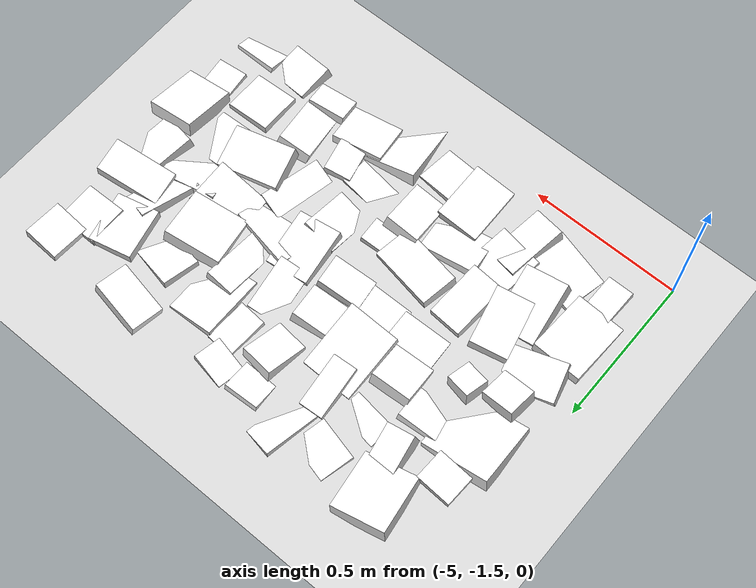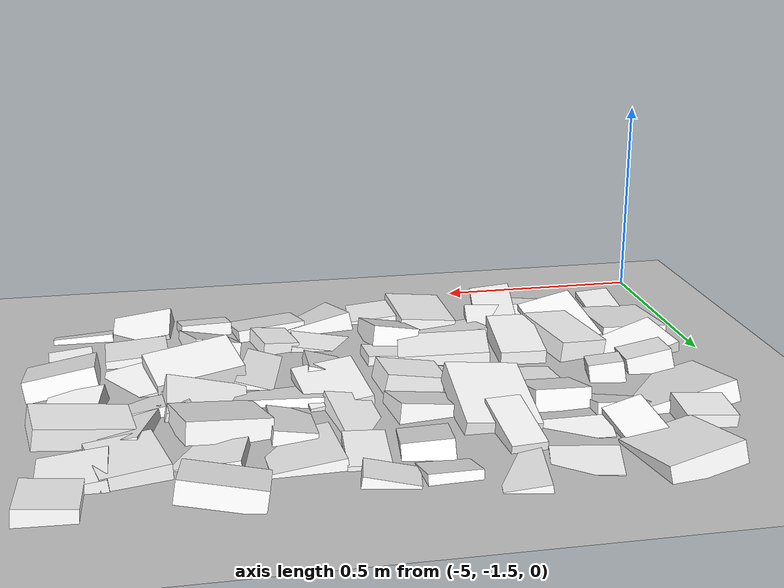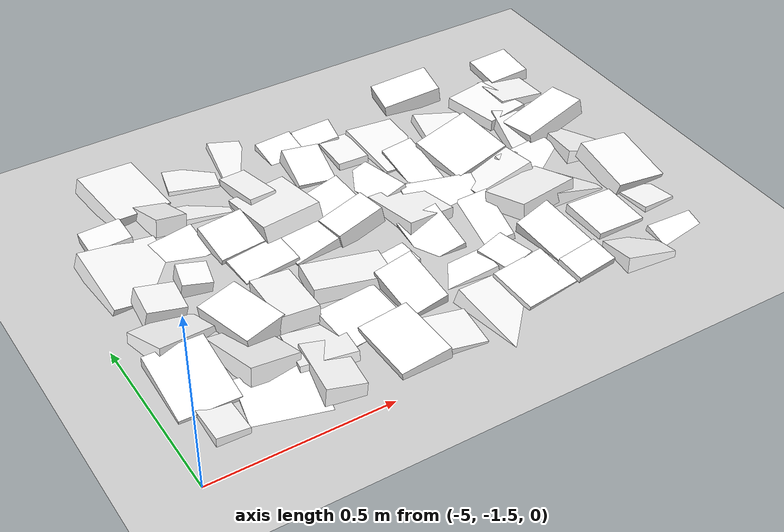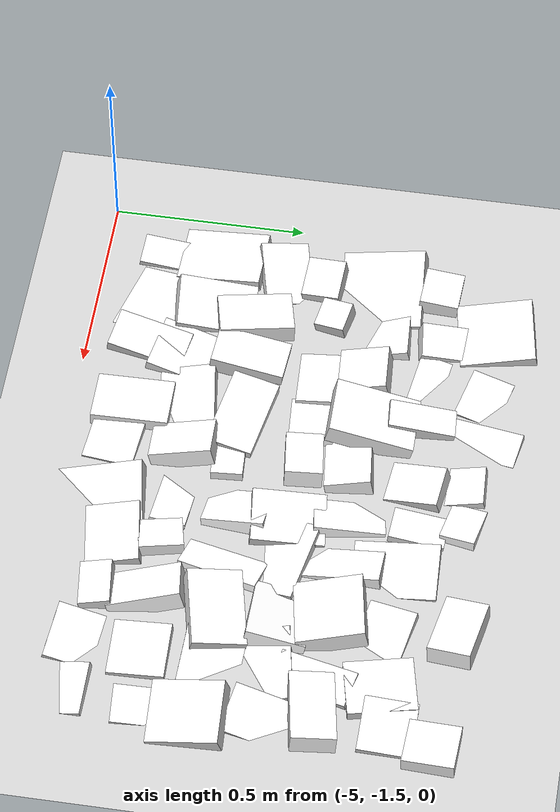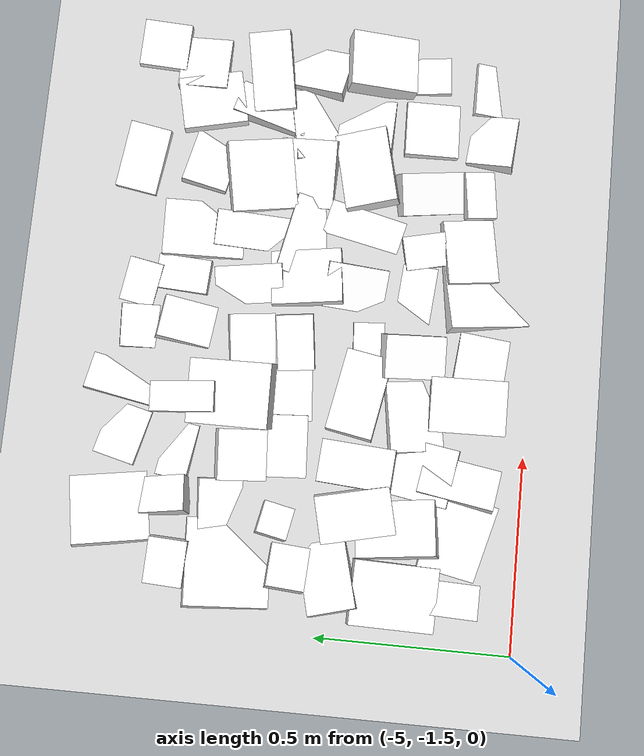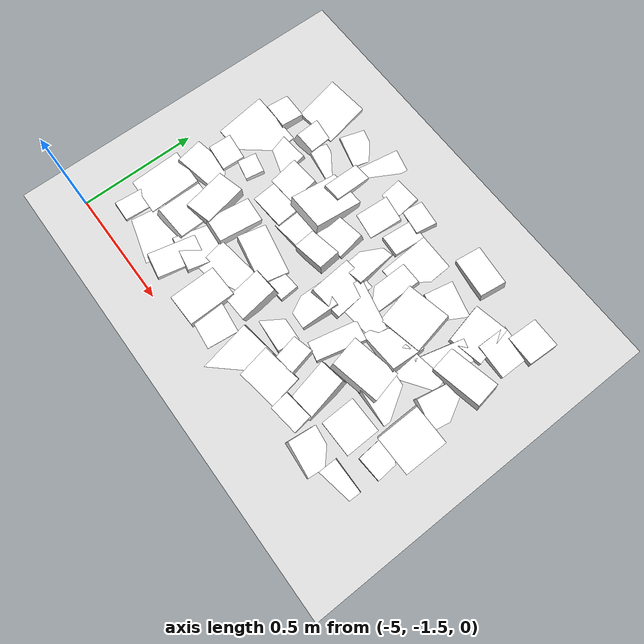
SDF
<sdf version="1.7">
 <world name="default">
  <include><uri>model://sun</uri></include>
  <include><uri>model://ground_plane</uri></include>
  <model name="static_environment">
   <static>true</static>
   <link name="region_270">
    <pose>-3.477037490346877 -0.45913335357981533 0.00507151562607162 -0.02771612115756067 0.08115244952845346 3.095913842097706</pose>
    <collision name="region_270_collision">
     <geometry><box><size>0.12334864234570181 0.12837354774721688 0.05</size></box></geometry>
     <surface><friction><ode><mu>1.0</mu><mu2>1.0</mu2></ode></friction></surface>
    </collision>
    <visual name="region_270_visual">
     <geometry><box><size>0.12334864234570181 0.12837354774721688 0.05</size></box></geometry>
     <material><ambient>1.0 1.0 1.0 1.0</ambient><diffuse>1.0 1.0 1.0 1.0</diffuse></material>
    </visual>
   </link>
   <link name="region_272">
    <pose>-3.801332803898247 -0.4361580840720827 0.02436785362661531 -0.1017771875999352 0.1519501084889815 2.9792150188601147</pose>
    <collision name="region_272_collision">
     <geometry><box><size>0.17538744813419 0.10896776987529247 0.05</size></box></geometry>
     <surface><friction><ode><mu>1.0</mu><mu2>1.0</mu2></ode></friction></surface>
    </collision>
    <visual name="region_272_visual">
     <geometry><box><size>0.17538744813419 0.10896776987529247 0.05</size></box></geometry>
     <material><ambient>1.0 1.0 1.0 1.0</ambient><diffuse>1.0 1.0 1.0 1.0</diffuse></material>
    </visual>
   </link>
   <link name="region_274">
    <pose>-4.12703195314999 -0.46398136101403087 -0.013462635521631183 -0.048701120936580466 0.17036177526596347 2.9555949188437514</pose>
    <collision name="region_274_collision">
     <geometry><box><size>0.11653447453826984 0.0905248681392372 0.05</size></box></geometry>
     <surface><friction><ode><mu>1.0</mu><mu2>1.0</mu2></ode></friction></surface>
    </collision>
    <visual name="region_274_visual">
     <geometry><box><size>0.11653447453826984 0.0905248681392372 0.05</size></box></geometry>
     <material><ambient>1.0 1.0 1.0 1.0</ambient><diffuse>1.0 1.0 1.0 1.0</diffuse></material>
    </visual>
   </link>
   <link name="region_275">
    <pose>-4.24647150931622 -0.479169787615879 -0.01838302702195481 -0.2265430162995712 0.01706716110331652 3.194122026085424</pose>
    <collision name="region_275_collision">
     <geometry><box><size>0.11393846133857073 0.12169243471842056 0.05</size></box></geometry>
     <surface><friction><ode><mu>1.0</mu><mu2>1.0</mu2></ode></friction></surface>
    </collision>
    <visual name="region_275_visual">
     <geometry><box><size>0.11393846133857073 0.12169243471842056 0.05</size></box></geometry>
     <material><ambient>1.0 1.0 1.0 1.0</ambient><diffuse>1.0 1.0 1.0 1.0</diffuse></material>
    </visual>
   </link>
   <link name="region_276">
    <pose>-4.394379219587412 -0.4435234717531652 -0.021938511164004245 -0.056529555046228586 -0.16837221297509358 2.965509576039369</pose>
    <collision name="region_276_collision">
     <geometry><box><size>0.09641826687533642 0.1868945103596235 0.05</size></box></geometry>
     <surface><friction><ode><mu>1.0</mu><mu2>1.0</mu2></ode></friction></surface>
    </collision>
    <visual name="region_276_visual">
     <geometry><box><size>0.09641826687533642 0.1868945103596235 0.05</size></box></geometry>
     <material><ambient>1.0 1.0 1.0 1.0</ambient><diffuse>1.0 1.0 1.0 1.0</diffuse></material>
    </visual>
   </link>
   <link name="region_277">
    <pose>-4.529044577309827 -0.4614298038781749 -0.022188551628008486 0.0937347089489462 -0.046030101639306376 2.8915722071055763</pose>
    <collision name="region_277_collision">
     <geometry><box><size>0.14416841120564872 0.11242126633868808 0.05</size></box></geometry>
     <surface><friction><ode><mu>1.0</mu><mu2>1.0</mu2></ode></friction></surface>
    </collision>
    <visual name="region_277_visual">
     <geometry><box><size>0.14416841120564872 0.11242126633868808 0.05</size></box></geometry>
     <material><ambient>1.0 1.0 1.0 1.0</ambient><diffuse>1.0 1.0 1.0 1.0</diffuse></material>
    </visual>
   </link>
   <link name="region_278">
    <pose>-4.726812363627556 -0.45085532001113615 0.009127379885384791 -0.1532194229647395 -0.15840608905423859 3.322147553441876</pose>
    <collision name="region_278_collision">
     <geometry><box><size>0.1745114483545691 0.1960445577811587 0.05</size></box></geometry>
     <surface><friction><ode><mu>1.0</mu><mu2>1.0</mu2></ode></friction></surface>
    </collision>
    <visual name="region_278_visual">
     <geometry><box><size>0.1745114483545691 0.1960445577811587 0.05</size></box></geometry>
     <material><ambient>1.0 1.0 1.0 1.0</ambient><diffuse>1.0 1.0 1.0 1.0</diffuse></material>
    </visual>
   </link>
   <link name="region_290">
    <pose>-3.5182793064703355 -0.5716456086656222 -0.0038640715060902844 0.059697148538746414 -0.12177581197744097 3.125192173794687</pose>
    <collision name="region_290_collision">
     <geometry><box><size>0.1432901630814529 0.13337231392042803 0.05</size></box></geometry>
     <surface><friction><ode><mu>1.0</mu><mu2>1.0</mu2></ode></friction></surface>
    </collision>
    <visual name="region_290_visual">
     <geometry><box><size>0.1432901630814529 0.13337231392042803 0.05</size></box></geometry>
     <material><ambient>1.0 1.0 1.0 1.0</ambient><diffuse>1.0 1.0 1.0 1.0</diffuse></material>
    </visual>
   </link>
   <link name="region_291">
    <pose>-3.622314888724005 -0.6033371100489776 0.0037374414146630966 -0.0044431856971697825 -0.04015640657507413 3.36294143729207</pose>
    <collision name="region_291_collision">
     <geometry><box><size>0.14340024546126323 0.17183384239830535 0.05</size></box></geometry>
     <surface><friction><ode><mu>1.0</mu><mu2>1.0</mu2></ode></friction></surface>
    </collision>
    <visual name="region_291_visual">
     <geometry><box><size>0.14340024546126323 0.17183384239830535 0.05</size></box></geometry>
     <material><ambient>1.0 1.0 1.0 1.0</ambient><diffuse>1.0 1.0 1.0 1.0</diffuse></material>
    </visual>
   </link>
   <link name="region_292">
    <pose>-3.784944268074196 -0.6143648629070603 -0.017365858259134326 -0.051249860885396015 -0.1654414298388336 2.93897540787294</pose>
    <collision name="region_292_collision">
     <geometry><box><size>0.15494358042405917 0.12228658190733036 0.05</size></box></geometry>
     <surface><friction><ode><mu>1.0</mu><mu2>1.0</mu2></ode></friction></surface>
    </collision>
    <visual name="region_292_visual">
     <geometry><box><size>0.15494358042405917 0.12228658190733036 0.05</size></box></geometry>
     <material><ambient>1.0 1.0 1.0 1.0</ambient><diffuse>1.0 1.0 1.0 1.0</diffuse></material>
    </visual>
   </link>
   <link name="region_293">
    <pose>-3.974313152677465 -0.6120665604997086 -0.01869808587148969 -0.08672786169231161 -0.1171440732571759 3.1869964123627805</pose>
    <collision name="region_293_collision">
     <geometry><box><size>0.15463840681200938 0.21488733294896523 0.05</size></box></geometry>
     <surface><friction><ode><mu>1.0</mu><mu2>1.0</mu2></ode></friction></surface>
    </collision>
    <visual name="region_293_visual">
     <geometry><box><size>0.15463840681200938 0.21488733294896523 0.05</size></box></geometry>
     <material><ambient>1.0 1.0 1.0 1.0</ambient><diffuse>1.0 1.0 1.0 1.0</diffuse></material>
    </visual>
   </link>
   <link name="region_294">
    <pose>-4.099690610032042 -0.5737287116586147 -0.010864970078264136 0.08185346107121372 0.01842337183518261 3.0750224242988264</pose>
    <collision name="region_294_collision">
     <geometry><box><size>0.09048984331780428 0.14124593544706218 0.05</size></box></geometry>
     <surface><friction><ode><mu>1.0</mu><mu2>1.0</mu2></ode></friction></surface>
    </collision>
    <visual name="region_294_visual">
     <geometry><box><size>0.09048984331780428 0.14124593544706218 0.05</size></box></geometry>
     <material><ambient>1.0 1.0 1.0 1.0</ambient><diffuse>1.0 1.0 1.0 1.0</diffuse></material>
    </visual>
   </link>
   <link name="region_295">
    <pose>-4.227442176377249 -0.5931194033051537 -0.001867135447246114 -0.2222855325430187 -0.08153079050962764 3.023359635275211</pose>
    <collision name="region_295_collision">
     <geometry><box><size>0.1113451831152201 0.1408866050441963 0.05</size></box></geometry>
     <surface><friction><ode><mu>1.0</mu><mu2>1.0</mu2></ode></friction></surface>
    </collision>
    <visual name="region_295_visual">
     <geometry><box><size>0.1113451831152201 0.1408866050441963 0.05</size></box></geometry>
     <material><ambient>1.0 1.0 1.0 1.0</ambient><diffuse>1.0 1.0 1.0 1.0</diffuse></material>
    </visual>
   </link>
   <link name="region_296">
    <pose>-4.423344349584966 -0.6101751358377865 0.00884056690523978 0.19106070988523471 -0.017167056306637007 3.2062670604706285</pose>
    <collision name="region_296_collision">
     <geometry><box><size>0.079389759937939 0.17269379841136215 0.05</size></box></geometry>
     <surface><friction><ode><mu>1.0</mu><mu2>1.0</mu2></ode></friction></surface>
    </collision>
    <visual name="region_296_visual">
     <geometry><box><size>0.079389759937939 0.17269379841136215 0.05</size></box></geometry>
     <material><ambient>1.0 1.0 1.0 1.0</ambient><diffuse>1.0 1.0 1.0 1.0</diffuse></material>
    </visual>
   </link>
   <link name="region_297">
    <pose>-4.56335747645122 -0.6097507256087839 -0.022329677279263563 0.16911359634627193 -0.0827285906326814 2.9869579196814566</pose>
    <collision name="region_297_collision">
     <geometry><box><size>0.14602076356138285 0.08336024495984139 0.05</size></box></geometry>
     <surface><friction><ode><mu>1.0</mu><mu2>1.0</mu2></ode></friction></surface>
    </collision>
    <visual name="region_297_visual">
     <geometry><box><size>0.14602076356138285 0.08336024495984139 0.05</size></box></geometry>
     <material><ambient>1.0 1.0 1.0 1.0</ambient><diffuse>1.0 1.0 1.0 1.0</diffuse></material>
    </visual>
   </link>
   <link name="region_298">
    <pose>-4.680284958716662 -0.5860049297094106 0.004895227291357412 0.22732731631414727 -0.22741896118083677 3.245523905476657</pose>
    <collision name="region_298_collision">
     <geometry><box><size>0.09324946934065742 0.12145212521597436 0.05</size></box></geometry>
     <surface><friction><ode><mu>1.0</mu><mu2>1.0</mu2></ode></friction></surface>
    </collision>
    <visual name="region_298_visual">
     <geometry><box><size>0.09324946934065742 0.12145212521597436 0.05</size></box></geometry>
     <material><ambient>1.0 1.0 1.0 1.0</ambient><diffuse>1.0 1.0 1.0 1.0</diffuse></material>
    </visual>
   </link>
   <link name="region_299">
    <pose>-4.843488917984005 -0.6108951921751552 0.009064236288716936 0.0724702909006088 0.06542830347315998 3.0984253362893583</pose>
    <collision name="region_299_collision">
     <geometry><box><size>0.11750113638421371 0.10086853191157587 0.05</size></box></geometry>
     <surface><friction><ode><mu>1.0</mu><mu2>1.0</mu2></ode></friction></surface>
    </collision>
    <visual name="region_299_visual">
     <geometry><box><size>0.11750113638421371 0.10086853191157587 0.05</size></box></geometry>
     <material><ambient>1.0 1.0 1.0 1.0</ambient><diffuse>1.0 1.0 1.0 1.0</diffuse></material>
    </visual>
   </link>
   <link name="region_310">
    <pose>-3.527990554589355 -0.7561636544202704 0.023535293526963035 0.08955452287191662 0.15885383841016165 3.3127087729034104</pose>
    <collision name="region_310_collision">
     <geometry><box><size>0.21051606068603881 0.11141600809802658 0.05</size></box></geometry>
     <surface><friction><ode><mu>1.0</mu><mu2>1.0</mu2></ode></friction></surface>
    </collision>
    <visual name="region_310_visual">
     <geometry><box><size>0.21051606068603881 0.11141600809802658 0.05</size></box></geometry>
     <material><ambient>1.0 1.0 1.0 1.0</ambient><diffuse>1.0 1.0 1.0 1.0</diffuse></material>
    </visual>
   </link>
   <link name="region_311">
    <pose>-3.6303267442172946 -0.7640459099962902 -0.006921418981770351 -0.09446504975960635 -0.19606230463737495 2.89327084576343</pose>
    <collision name="region_311_collision">
     <geometry><box><size>0.09163506559061647 0.20066032310213747 0.05</size></box></geometry>
     <surface><friction><ode><mu>1.0</mu><mu2>1.0</mu2></ode></friction></surface>
    </collision>
    <visual name="region_311_visual">
     <geometry><box><size>0.09163506559061647 0.20066032310213747 0.05</size></box></geometry>
     <material><ambient>1.0 1.0 1.0 1.0</ambient><diffuse>1.0 1.0 1.0 1.0</diffuse></material>
    </visual>
   </link>
   <link name="region_312">
    <pose>-3.8156500165819702 -0.7529110247378297 0.012183425382132726 -0.17368183305182733 0.1143094807454913 3.3153593915278323</pose>
    <collision name="region_312_collision">
     <geometry><box><size>0.18745238602674333 0.17353952694805272 0.05</size></box></geometry>
     <surface><friction><ode><mu>1.0</mu><mu2>1.0</mu2></ode></friction></surface>
    </collision>
    <visual name="region_312_visual">
     <geometry><box><size>0.18745238602674333 0.17353952694805272 0.05</size></box></geometry>
     <material><ambient>1.0 1.0 1.0 1.0</ambient><diffuse>1.0 1.0 1.0 1.0</diffuse></material>
    </visual>
   </link>
   <link name="region_313">
    <pose>-3.9645569112160928 -0.7427247223453514 -0.013848058930201253 -0.1428098778377574 0.136296727476653 3.105049524556211</pose>
    <collision name="region_313_collision">
     <geometry><box><size>0.09440581683916736 0.2008854527763042 0.05</size></box></geometry>
     <surface><friction><ode><mu>1.0</mu><mu2>1.0</mu2></ode></friction></surface>
    </collision>
    <visual name="region_313_visual">
     <geometry><box><size>0.09440581683916736 0.2008854527763042 0.05</size></box></geometry>
     <material><ambient>1.0 1.0 1.0 1.0</ambient><diffuse>1.0 1.0 1.0 1.0</diffuse></material>
    </visual>
   </link>
   <link name="region_314">
    <pose>-4.105850039690217 -0.7505422772796573 -0.014535865738042343 0.13859044630560535 0.19737517504694174 3.2860501570756018</pose>
    <collision name="region_314_collision">
     <geometry><box><size>0.10266557887821288 0.18035521456239564 0.05</size></box></geometry>
     <surface><friction><ode><mu>1.0</mu><mu2>1.0</mu2></ode></friction></surface>
    </collision>
    <visual name="region_314_visual">
     <geometry><box><size>0.10266557887821288 0.18035521456239564 0.05</size></box></geometry>
     <material><ambient>1.0 1.0 1.0 1.0</ambient><diffuse>1.0 1.0 1.0 1.0</diffuse></material>
    </visual>
   </link>
   <link name="region_315">
    <pose>-4.265936334425189 -0.7706762238046231 -0.0025910577496166542 -0.16932215167052794 0.1488834569210959 3.2522677404589038</pose>
    <collision name="region_315_collision">
     <geometry><box><size>0.15620964040847915 0.11961238524288338 0.05</size></box></geometry>
     <surface><friction><ode><mu>1.0</mu><mu2>1.0</mu2></ode></friction></surface>
    </collision>
    <visual name="region_315_visual">
     <geometry><box><size>0.15620964040847915 0.11961238524288338 0.05</size></box></geometry>
     <material><ambient>1.0 1.0 1.0 1.0</ambient><diffuse>1.0 1.0 1.0 1.0</diffuse></material>
    </visual>
   </link>
   <link name="region_316">
    <pose>-4.403447505063081 -0.7308600462514322 0.02232540918515971 0.23363357347500296 0.09381526233920023 3.1529764941268605</pose>
    <collision name="region_316_collision">
     <geometry><box><size>0.16879758322384925 0.2207504471953721 0.05</size></box></geometry>
     <surface><friction><ode><mu>1.0</mu><mu2>1.0</mu2></ode></friction></surface>
    </collision>
    <visual name="region_316_visual">
     <geometry><box><size>0.16879758322384925 0.2207504471953721 0.05</size></box></geometry>
     <material><ambient>1.0 1.0 1.0 1.0</ambient><diffuse>1.0 1.0 1.0 1.0</diffuse></material>
    </visual>
   </link>
   <link name="region_317">
    <pose>-4.5581512558838835 -0.7715324580897335 0.007718381799892482 -0.22705836571387017 0.04632897633086469 3.2042560602342207</pose>
    <collision name="region_317_collision">
     <geometry><box><size>0.13132489622592958 0.12737731855548268 0.05</size></box></geometry>
     <surface><friction><ode><mu>1.0</mu><mu2>1.0</mu2></ode></friction></surface>
    </collision>
    <visual name="region_317_visual">
     <geometry><box><size>0.13132489622592958 0.12737731855548268 0.05</size></box></geometry>
     <material><ambient>1.0 1.0 1.0 1.0</ambient><diffuse>1.0 1.0 1.0 1.0</diffuse></material>
    </visual>
   </link>
   <link name="region_318">
    <pose>-4.719348329800459 -0.7285188688762471 -0.020307031561404506 -0.2296833178997852 0.09224480896452414 3.2043972115776738</pose>
    <collision name="region_318_collision">
     <geometry><box><size>0.1970833792584313 0.11422613539522321 0.05</size></box></geometry>
     <surface><friction><ode><mu>1.0</mu><mu2>1.0</mu2></ode></friction></surface>
    </collision>
    <visual name="region_318_visual">
     <geometry><box><size>0.1970833792584313 0.11422613539522321 0.05</size></box></geometry>
     <material><ambient>1.0 1.0 1.0 1.0</ambient><diffuse>1.0 1.0 1.0 1.0</diffuse></material>
    </visual>
   </link>
   <link name="region_319">
    <pose>-4.8369361077118205 -0.7612253175428522 -0.008536687702757794 -0.184382736913409 -0.1991113184299133 3.2159685148142945</pose>
    <collision name="region_319_collision">
     <geometry><box><size>0.22248639287737523 0.21583296270649907 0.05</size></box></geometry>
     <surface><friction><ode><mu>1.0</mu><mu2>1.0</mu2></ode></friction></surface>
    </collision>
    <visual name="region_319_visual">
     <geometry><box><size>0.22248639287737523 0.21583296270649907 0.05</size></box></geometry>
     <material><ambient>1.0 1.0 1.0 1.0</ambient><diffuse>1.0 1.0 1.0 1.0</diffuse></material>
    </visual>
   </link>
   <link name="region_330">
    <pose>-3.5047558096011526 -0.873763136567249 -0.01541687979473126 0.16163870731265223 -0.1979402900696558 2.9435096608978277</pose>
    <collision name="region_330_collision">
     <geometry><box><size>0.12761081211112277 0.1804533299706895 0.05</size></box></geometry>
     <surface><friction><ode><mu>1.0</mu><mu2>1.0</mu2></ode></friction></surface>
    </collision>
    <visual name="region_330_visual">
     <geometry><box><size>0.12761081211112277 0.1804533299706895 0.05</size></box></geometry>
     <material><ambient>1.0 1.0 1.0 1.0</ambient><diffuse>1.0 1.0 1.0 1.0</diffuse></material>
    </visual>
   </link>
   <link name="region_331">
    <pose>-3.6573399628930425 -0.8808681959308151 -0.01832652337276558 -0.1883810123656049 -0.08657952093668969 3.329290391322954</pose>
    <collision name="region_331_collision">
     <geometry><box><size>0.1960217983562993 0.12015958211907098 0.05</size></box></geometry>
     <surface><friction><ode><mu>1.0</mu><mu2>1.0</mu2></ode></friction></surface>
    </collision>
    <visual name="region_331_visual">
     <geometry><box><size>0.1960217983562993 0.12015958211907098 0.05</size></box></geometry>
     <material><ambient>1.0 1.0 1.0 1.0</ambient><diffuse>1.0 1.0 1.0 1.0</diffuse></material>
    </visual>
   </link>
   <link name="region_332">
    <pose>-3.792094908034815 -0.8783156926228446 -0.00887501697903727 0.19772305356917796 0.22930609426431536 3.1518530347066243</pose>
    <collision name="region_332_collision">
     <geometry><box><size>0.18170658604491727 0.15080312876620497 0.05</size></box></geometry>
     <surface><friction><ode><mu>1.0</mu><mu2>1.0</mu2></ode></friction></surface>
    </collision>
    <visual name="region_332_visual">
     <geometry><box><size>0.18170658604491727 0.15080312876620497 0.05</size></box></geometry>
     <material><ambient>1.0 1.0 1.0 1.0</ambient><diffuse>1.0 1.0 1.0 1.0</diffuse></material>
    </visual>
   </link>
   <link name="region_333">
    <pose>-3.977187555430992 -0.9232226026103432 -0.023948145923845882 -0.17475453704338995 -0.05593179417722194 2.9404156146876725</pose>
    <collision name="region_333_collision">
     <geometry><box><size>0.2168735377938434 0.19083801911722684 0.05</size></box></geometry>
     <surface><friction><ode><mu>1.0</mu><mu2>1.0</mu2></ode></friction></surface>
    </collision>
    <visual name="region_333_visual">
     <geometry><box><size>0.2168735377938434 0.19083801911722684 0.05</size></box></geometry>
     <material><ambient>1.0 1.0 1.0 1.0</ambient><diffuse>1.0 1.0 1.0 1.0</diffuse></material>
    </visual>
   </link>
   <link name="region_334">
    <pose>-4.079745036332632 -0.9001446878129737 -0.0007838694379721234 0.12389662543616714 -0.10282847280876911 3.2476180257908736</pose>
    <collision name="region_334_collision">
     <geometry><box><size>0.14537411804225825 0.18722703086210254 0.05</size></box></geometry>
     <surface><friction><ode><mu>1.0</mu><mu2>1.0</mu2></ode></friction></surface>
    </collision>
    <visual name="region_334_visual">
     <geometry><box><size>0.14537411804225825 0.18722703086210254 0.05</size></box></geometry>
     <material><ambient>1.0 1.0 1.0 1.0</ambient><diffuse>1.0 1.0 1.0 1.0</diffuse></material>
    </visual>
   </link>
   <link name="region_335">
    <pose>-4.254988441285384 -0.8859235490124839 0.024616492476595107 0.05720244683321696 0.19137880585208894 3.2666203473136304</pose>
    <collision name="region_335_collision">
     <geometry><box><size>0.14406348436075736 0.09553213312884268 0.05</size></box></geometry>
     <surface><friction><ode><mu>1.0</mu><mu2>1.0</mu2></ode></friction></surface>
    </collision>
    <visual name="region_335_visual">
     <geometry><box><size>0.14406348436075736 0.09553213312884268 0.05</size></box></geometry>
     <material><ambient>1.0 1.0 1.0 1.0</ambient><diffuse>1.0 1.0 1.0 1.0</diffuse></material>
    </visual>
   </link>
   <link name="region_336">
    <pose>-4.388432243158087 -0.8849210474669175 -0.008395491028501567 0.0020852423983048762 0.18915146218133388 3.2217491711843422</pose>
    <collision name="region_336_collision">
     <geometry><box><size>0.1350113409133108 0.11228576863426522 0.05</size></box></geometry>
     <surface><friction><ode><mu>1.0</mu><mu2>1.0</mu2></ode></friction></surface>
    </collision>
    <visual name="region_336_visual">
     <geometry><box><size>0.1350113409133108 0.11228576863426522 0.05</size></box></geometry>
     <material><ambient>1.0 1.0 1.0 1.0</ambient><diffuse>1.0 1.0 1.0 1.0</diffuse></material>
    </visual>
   </link>
   <link name="region_337">
    <pose>-4.523710438440576 -0.8836592450820475 -0.013795008774969543 -0.04905302004328621 0.08014773181191015 3.195177464672373</pose>
    <collision name="region_337_collision">
     <geometry><box><size>0.16075568002329338 0.11083880059381111 0.05</size></box></geometry>
     <surface><friction><ode><mu>1.0</mu><mu2>1.0</mu2></ode></friction></surface>
    </collision>
    <visual name="region_337_visual">
     <geometry><box><size>0.16075568002329338 0.11083880059381111 0.05</size></box></geometry>
     <material><ambient>1.0 1.0 1.0 1.0</ambient><diffuse>1.0 1.0 1.0 1.0</diffuse></material>
    </visual>
   </link>
   <link name="region_338">
    <pose>-4.717911850741647 -0.8745387102717986 0.01517369169035205 -0.10198202480178442 -0.14897861290540237 2.94367097684305</pose>
    <collision name="region_338_collision">
     <geometry><box><size>0.08251137428061393 0.0797373742661293 0.05</size></box></geometry>
     <surface><friction><ode><mu>1.0</mu><mu2>1.0</mu2></ode></friction></surface>
    </collision>
    <visual name="region_338_visual">
     <geometry><box><size>0.08251137428061393 0.0797373742661293 0.05</size></box></geometry>
     <material><ambient>1.0 1.0 1.0 1.0</ambient><diffuse>1.0 1.0 1.0 1.0</diffuse></material>
    </visual>
   </link>
   <link name="region_339">
    <pose>-4.831981482574789 -0.9174831117387501 0.017057192157627153 -0.08751520909932842 -0.2054077395813499 3.075650127977774</pose>
    <collision name="region_339_collision">
     <geometry><box><size>0.10942786026237826 0.09858133595441183 0.05</size></box></geometry>
     <surface><friction><ode><mu>1.0</mu><mu2>1.0</mu2></ode></friction></surface>
    </collision>
    <visual name="region_339_visual">
     <geometry><box><size>0.10942786026237826 0.09858133595441183 0.05</size></box></geometry>
     <material><ambient>1.0 1.0 1.0 1.0</ambient><diffuse>1.0 1.0 1.0 1.0</diffuse></material>
    </visual>
   </link>
   <link name="region_350">
    <pose>-3.4780161392321807 -1.0507700164138052 0.015329994752647687 -0.20244241653278883 -0.15746092102529113 3.1788011832167267</pose>
    <collision name="region_350_collision">
     <geometry><box><size>0.16280859109524162 0.18202787009229426 0.05</size></box></geometry>
     <surface><friction><ode><mu>1.0</mu><mu2>1.0</mu2></ode></friction></surface>
    </collision>
    <visual name="region_350_visual">
     <geometry><box><size>0.16280859109524162 0.18202787009229426 0.05</size></box></geometry>
     <material><ambient>1.0 1.0 1.0 1.0</ambient><diffuse>1.0 1.0 1.0 1.0</diffuse></material>
    </visual>
   </link>
   <link name="region_351">
    <pose>-3.659286246419942 -1.0234028440429248 -0.014103614462149083 0.15689922816788465 -0.2270024822287277 3.086132317086196</pose>
    <collision name="region_351_collision">
     <geometry><box><size>0.1683896563766561 0.14880323451555583 0.05</size></box></geometry>
     <surface><friction><ode><mu>1.0</mu><mu2>1.0</mu2></ode></friction></surface>
    </collision>
    <visual name="region_351_visual">
     <geometry><box><size>0.1683896563766561 0.14880323451555583 0.05</size></box></geometry>
     <material><ambient>1.0 1.0 1.0 1.0</ambient><diffuse>1.0 1.0 1.0 1.0</diffuse></material>
    </visual>
   </link>
   <link name="region_352">
    <pose>-3.776016564752384 -1.032349187637891 0.02239207798680097 0.2001629081020065 -0.09020141062671538 3.363780777421986</pose>
    <collision name="region_352_collision">
     <geometry><box><size>0.2062125330085176 0.13803825561933603 0.05</size></box></geometry>
     <surface><friction><ode><mu>1.0</mu><mu2>1.0</mu2></ode></friction></surface>
    </collision>
    <visual name="region_352_visual">
     <geometry><box><size>0.2062125330085176 0.13803825561933603 0.05</size></box></geometry>
     <material><ambient>1.0 1.0 1.0 1.0</ambient><diffuse>1.0 1.0 1.0 1.0</diffuse></material>
    </visual>
   </link>
   <link name="region_353">
    <pose>-3.9288264830821564 -1.0394629832428801 -0.01756821762831445 -0.006198594016613379 0.22870528701405318 2.902081208822618</pose>
    <collision name="region_353_collision">
     <geometry><box><size>0.09867260434872197 0.20604420142939686 0.05</size></box></geometry>
     <surface><friction><ode><mu>1.0</mu><mu2>1.0</mu2></ode></friction></surface>
    </collision>
    <visual name="region_353_visual">
     <geometry><box><size>0.09867260434872197 0.20604420142939686 0.05</size></box></geometry>
     <material><ambient>1.0 1.0 1.0 1.0</ambient><diffuse>1.0 1.0 1.0 1.0</diffuse></material>
    </visual>
   </link>
   <link name="region_354">
    <pose>-4.091166940666405 -1.0270148138474346 -0.009433674808640586 -0.14955496608567376 0.2432502772280738 3.0538111095379747</pose>
    <collision name="region_354_collision">
     <geometry><box><size>0.1196575123072973 0.16125288287606282 0.05</size></box></geometry>
     <surface><friction><ode><mu>1.0</mu><mu2>1.0</mu2></ode></friction></surface>
    </collision>
    <visual name="region_354_visual">
     <geometry><box><size>0.1196575123072973 0.16125288287606282 0.05</size></box></geometry>
     <material><ambient>1.0 1.0 1.0 1.0</ambient><diffuse>1.0 1.0 1.0 1.0</diffuse></material>
    </visual>
   </link>
   <link name="region_355">
    <pose>-4.231060718974778 -1.075356610266241 -0.007047533762009544 -0.00967238399611614 0.0918501455570866 3.205472391193973</pose>
    <collision name="region_355_collision">
     <geometry><box><size>0.0957018746868213 0.08132607593350327 0.05</size></box></geometry>
     <surface><friction><ode><mu>1.0</mu><mu2>1.0</mu2></ode></friction></surface>
    </collision>
    <visual name="region_355_visual">
     <geometry><box><size>0.0957018746868213 0.08132607593350327 0.05</size></box></geometry>
     <material><ambient>1.0 1.0 1.0 1.0</ambient><diffuse>1.0 1.0 1.0 1.0</diffuse></material>
    </visual>
   </link>
   <link name="region_356">
    <pose>-4.37618766146757 -1.063394842127045 0.007056994856804263 0.094555515151587 -0.06579888782152665 2.9508440093140136</pose>
    <collision name="region_356_collision">
     <geometry><box><size>0.2176469716819465 0.12240035722539587 0.05</size></box></geometry>
     <surface><friction><ode><mu>1.0</mu><mu2>1.0</mu2></ode></friction></surface>
    </collision>
    <visual name="region_356_visual">
     <geometry><box><size>0.2176469716819465 0.12240035722539587 0.05</size></box></geometry>
     <material><ambient>1.0 1.0 1.0 1.0</ambient><diffuse>1.0 1.0 1.0 1.0</diffuse></material>
    </visual>
   </link>
   <link name="region_357">
    <pose>-4.5597556506125905 -1.0713417769409188 0.018312123933492484 0.1276517112217161 -0.015557314781201259 3.0645981521531973</pose>
    <collision name="region_357_collision">
     <geometry><box><size>0.10977520256898866 0.19059361364421284 0.05</size></box></geometry>
     <surface><friction><ode><mu>1.0</mu><mu2>1.0</mu2></ode></friction></surface>
    </collision>
    <visual name="region_357_visual">
     <geometry><box><size>0.10977520256898866 0.19059361364421284 0.05</size></box></geometry>
     <material><ambient>1.0 1.0 1.0 1.0</ambient><diffuse>1.0 1.0 1.0 1.0</diffuse></material>
    </visual>
   </link>
   <link name="region_358">
    <pose>-4.682270648780278 -1.0772120892299515 0.023996747954092915 0.0565577781041367 0.08645475745543346 3.370739490753078</pose>
    <collision name="region_358_collision">
     <geometry><box><size>0.12157037573992212 0.19278964178814897 0.05</size></box></geometry>
     <surface><friction><ode><mu>1.0</mu><mu2>1.0</mu2></ode></friction></surface>
    </collision>
    <visual name="region_358_visual">
     <geometry><box><size>0.12157037573992212 0.19278964178814897 0.05</size></box></geometry>
     <material><ambient>1.0 1.0 1.0 1.0</ambient><diffuse>1.0 1.0 1.0 1.0</diffuse></material>
    </visual>
   </link>
   <link name="region_359">
    <pose>-4.847661737461493 -1.0230940530636283 -0.0039357545569622225 0.1858312431452443 -0.2037443431406885 3.386380485360176</pose>
    <collision name="region_359_collision">
     <geometry><box><size>0.1782236694360762 0.12576721341815122 0.05</size></box></geometry>
     <surface><friction><ode><mu>1.0</mu><mu2>1.0</mu2></ode></friction></surface>
    </collision>
    <visual name="region_359_visual">
     <geometry><box><size>0.1782236694360762 0.12576721341815122 0.05</size></box></geometry>
     <material><ambient>1.0 1.0 1.0 1.0</ambient><diffuse>1.0 1.0 1.0 1.0</diffuse></material>
    </visual>
   </link>
   <link name="region_370">
    <pose>-3.495200287975515 -1.1703956574073702 -0.02152459707228635 0.0977969181690796 -0.07428949310150029 3.2125703623722774</pose>
    <collision name="region_370_collision">
     <geometry><box><size>0.10357108637007105 0.14131026779554792 0.05</size></box></geometry>
     <surface><friction><ode><mu>1.0</mu><mu2>1.0</mu2></ode></friction></surface>
    </collision>
    <visual name="region_370_visual">
     <geometry><box><size>0.10357108637007105 0.14131026779554792 0.05</size></box></geometry>
     <material><ambient>1.0 1.0 1.0 1.0</ambient><diffuse>1.0 1.0 1.0 1.0</diffuse></material>
    </visual>
   </link>
   <link name="region_371">
    <pose>-3.647631518398207 -1.1972995807680826 -0.00827676205591112 -0.05382512926496702 -0.05750281760204756 3.1646626496465404</pose>
    <collision name="region_371_collision">
     <geometry><box><size>0.148385863525503 0.14348411196234698 0.05</size></box></geometry>
     <surface><friction><ode><mu>1.0</mu><mu2>1.0</mu2></ode></friction></surface>
    </collision>
    <visual name="region_371_visual">
     <geometry><box><size>0.148385863525503 0.14348411196234698 0.05</size></box></geometry>
     <material><ambient>1.0 1.0 1.0 1.0</ambient><diffuse>1.0 1.0 1.0 1.0</diffuse></material>
    </visual>
   </link>
   <link name="region_372">
    <pose>-3.8208000116807788 -1.213460143200969 0.003769577589475114 -0.2382877484893529 0.2136128412603852 3.2763818262681625</pose>
    <collision name="region_372_collision">
     <geometry><box><size>0.11107265786984542 0.18895392311250236 0.05</size></box></geometry>
     <surface><friction><ode><mu>1.0</mu><mu2>1.0</mu2></ode></friction></surface>
    </collision>
    <visual name="region_372_visual">
     <geometry><box><size>0.11107265786984542 0.18895392311250236 0.05</size></box></geometry>
     <material><ambient>1.0 1.0 1.0 1.0</ambient><diffuse>1.0 1.0 1.0 1.0</diffuse></material>
    </visual>
   </link>
   <link name="region_373">
    <pose>-3.9795073662764646 -1.20427207144774 0.0010478199627515505 0.017835581170338233 0.12552623795930418 3.3612612010919456</pose>
    <collision name="region_373_collision">
     <geometry><box><size>0.089172075726055 0.11236868915907194 0.05</size></box></geometry>
     <surface><friction><ode><mu>1.0</mu><mu2>1.0</mu2></ode></friction></surface>
    </collision>
    <visual name="region_373_visual">
     <geometry><box><size>0.089172075726055 0.11236868915907194 0.05</size></box></geometry>
     <material><ambient>1.0 1.0 1.0 1.0</ambient><diffuse>1.0 1.0 1.0 1.0</diffuse></material>
    </visual>
   </link>
   <link name="region_374">
    <pose>-4.1060534118232495 -1.1915248507275082 -0.02099190795328463 0.08055746271692282 0.15187223294358881 3.063219287369409</pose>
    <collision name="region_374_collision">
     <geometry><box><size>0.1751583351545372 0.09200691939694212 0.05</size></box></geometry>
     <surface><friction><ode><mu>1.0</mu><mu2>1.0</mu2></ode></friction></surface>
    </collision>
    <visual name="region_374_visual">
     <geometry><box><size>0.1751583351545372 0.09200691939694212 0.05</size></box></geometry>
     <material><ambient>1.0 1.0 1.0 1.0</ambient><diffuse>1.0 1.0 1.0 1.0</diffuse></material>
    </visual>
   </link>
   <link name="region_375">
    <pose>-4.263970046910061 -1.193637723956771 0.015113930011472855 -0.23031606954261225 0.16933087152497822 3.177380039310221</pose>
    <collision name="region_375_collision">
     <geometry><box><size>0.11271153118790748 0.16354173542608508 0.05</size></box></geometry>
     <surface><friction><ode><mu>1.0</mu><mu2>1.0</mu2></ode></friction></surface>
    </collision>
    <visual name="region_375_visual">
     <geometry><box><size>0.11271153118790748 0.16354173542608508 0.05</size></box></geometry>
     <material><ambient>1.0 1.0 1.0 1.0</ambient><diffuse>1.0 1.0 1.0 1.0</diffuse></material>
    </visual>
   </link>
   <link name="region_376">
    <pose>-4.419910879144668 -1.2071141379251054 -0.01543487612595666 -0.18596649579895908 -0.06294922337010667 3.290437387627085</pose>
    <collision name="region_376_collision">
     <geometry><box><size>0.18445547737841322 0.14218660687171883 0.05</size></box></geometry>
     <surface><friction><ode><mu>1.0</mu><mu2>1.0</mu2></ode></friction></surface>
    </collision>
    <visual name="region_376_visual">
     <geometry><box><size>0.18445547737841322 0.14218660687171883 0.05</size></box></geometry>
     <material><ambient>1.0 1.0 1.0 1.0</ambient><diffuse>1.0 1.0 1.0 1.0</diffuse></material>
    </visual>
   </link>
   <link name="region_377">
    <pose>-4.556834790691225 -1.2272269432209504 -0.016262404358812606 0.18542983258824752 -0.005827291403545876 2.9711953131471924</pose>
    <collision name="region_377_collision">
     <geometry><box><size>0.1517831255193207 0.19928754355497638 0.05</size></box></geometry>
     <surface><friction><ode><mu>1.0</mu><mu2>1.0</mu2></ode></friction></surface>
    </collision>
    <visual name="region_377_visual">
     <geometry><box><size>0.1517831255193207 0.19928754355497638 0.05</size></box></geometry>
     <material><ambient>1.0 1.0 1.0 1.0</ambient><diffuse>1.0 1.0 1.0 1.0</diffuse></material>
    </visual>
   </link>
   <link name="region_378">
    <pose>-4.711961138779577 -1.187573679330612 0.004500485928557091 0.2422444170500776 -0.18839107463732857 3.225294677978536</pose>
    <collision name="region_378_collision">
     <geometry><box><size>0.14254087492111883 0.2063466974257156 0.05</size></box></geometry>
     <surface><friction><ode><mu>1.0</mu><mu2>1.0</mu2></ode></friction></surface>
    </collision>
    <visual name="region_378_visual">
     <geometry><box><size>0.14254087492111883 0.2063466974257156 0.05</size></box></geometry>
     <material><ambient>1.0 1.0 1.0 1.0</ambient><diffuse>1.0 1.0 1.0 1.0</diffuse></material>
    </visual>
   </link>
   <link name="region_379">
    <pose>-4.876815164916389 -1.191301723644873 -0.004540809893994913 -0.11045264472604571 0.01120750192443698 3.1099895217842675</pose>
    <collision name="region_379_collision">
     <geometry><box><size>0.16328882734409597 0.2198569274953671 0.05</size></box></geometry>
     <surface><friction><ode><mu>1.0</mu><mu2>1.0</mu2></ode></friction></surface>
    </collision>
    <visual name="region_379_visual">
     <geometry><box><size>0.16328882734409597 0.2198569274953671 0.05</size></box></geometry>
     <material><ambient>1.0 1.0 1.0 1.0</ambient><diffuse>1.0 1.0 1.0 1.0</diffuse></material>
    </visual>
   </link>
   <link name="region_390">
    <pose>-3.518917120228113 -1.3492134359562507 -0.0221635934367624 -0.24376443401194453 -0.046146636884858705 3.141074668911298</pose>
    <collision name="region_390_collision">
     <geometry><box><size>0.14411918202419116 0.0951580346812293 0.05</size></box></geometry>
     <surface><friction><ode><mu>1.0</mu><mu2>1.0</mu2></ode></friction></surface>
    </collision>
    <visual name="region_390_visual">
     <geometry><box><size>0.14411918202419116 0.0951580346812293 0.05</size></box></geometry>
     <material><ambient>1.0 1.0 1.0 1.0</ambient><diffuse>1.0 1.0 1.0 1.0</diffuse></material>
    </visual>
   </link>
   <link name="region_391">
    <pose>-3.665261996753218 -1.3659954411414859 -0.011039189932355503 0.23143152231506164 -0.16714871402306852 3.0249887517331753</pose>
    <collision name="region_391_collision">
     <geometry><box><size>0.14606503036597662 0.12143953529543527 0.05</size></box></geometry>
     <surface><friction><ode><mu>1.0</mu><mu2>1.0</mu2></ode></friction></surface>
    </collision>
    <visual name="region_391_visual">
     <geometry><box><size>0.14606503036597662 0.12143953529543527 0.05</size></box></geometry>
     <material><ambient>1.0 1.0 1.0 1.0</ambient><diffuse>1.0 1.0 1.0 1.0</diffuse></material>
    </visual>
   </link>
   <link name="region_392">
    <pose>-3.816773416433847 -1.3353284762454163 -0.001416153756840434 -0.1758796008186257 0.023567789472466072 3.2707995509400067</pose>
    <collision name="region_392_collision">
     <geometry><box><size>0.12519256766807113 0.08105397803245769 0.05</size></box></geometry>
     <surface><friction><ode><mu>1.0</mu><mu2>1.0</mu2></ode></friction></surface>
    </collision>
    <visual name="region_392_visual">
     <geometry><box><size>0.12519256766807113 0.08105397803245769 0.05</size></box></geometry>
     <material><ambient>1.0 1.0 1.0 1.0</ambient><diffuse>1.0 1.0 1.0 1.0</diffuse></material>
    </visual>
   </link>
   <link name="region_393">
    <pose>-3.972480878480453 -1.320851880292162 -0.006787346325140182 -0.17617211938048494 -0.042587883995707954 3.3021674786323714</pose>
    <collision name="region_393_collision">
     <geometry><box><size>0.17017991093148294 0.13788714666595178 0.05</size></box></geometry>
     <surface><friction><ode><mu>1.0</mu><mu2>1.0</mu2></ode></friction></surface>
    </collision>
    <visual name="region_393_visual">
     <geometry><box><size>0.17017991093148294 0.13788714666595178 0.05</size></box></geometry>
     <material><ambient>1.0 1.0 1.0 1.0</ambient><diffuse>1.0 1.0 1.0 1.0</diffuse></material>
    </visual>
   </link>
   <link name="region_394">
    <pose>-4.085504615997397 -1.371698282698198 -0.018379350643861203 -0.2126976913259086 -0.16759115540798192 3.316886011021965</pose>
    <collision name="region_394_collision">
     <geometry><box><size>0.17888302718612817 0.21679258268322638 0.05</size></box></geometry>
     <surface><friction><ode><mu>1.0</mu><mu2>1.0</mu2></ode></friction></surface>
    </collision>
    <visual name="region_394_visual">
     <geometry><box><size>0.17888302718612817 0.21679258268322638 0.05</size></box></geometry>
     <material><ambient>1.0 1.0 1.0 1.0</ambient><diffuse>1.0 1.0 1.0 1.0</diffuse></material>
    </visual>
   </link>
   <link name="region_395">
    <pose>-4.271380104230484 -1.3723915628624672 -0.01169797457919024 -0.004594223968124811 -0.12402833040892558 3.0302340268533845</pose>
    <collision name="region_395_collision">
     <geometry><box><size>0.15432428405637436 0.13137305514584274 0.05</size></box></geometry>
     <surface><friction><ode><mu>1.0</mu><mu2>1.0</mu2></ode></friction></surface>
    </collision>
    <visual name="region_395_visual">
     <geometry><box><size>0.15432428405637436 0.13137305514584274 0.05</size></box></geometry>
     <material><ambient>1.0 1.0 1.0 1.0</ambient><diffuse>1.0 1.0 1.0 1.0</diffuse></material>
    </visual>
   </link>
   <link name="region_396">
    <pose>-4.377901246622257 -1.3466221932785967 -0.0009782679614317065 0.007281042154414885 0.10114119218226636 3.162469741772037</pose>
    <collision name="region_396_collision">
     <geometry><box><size>0.1425406439835592 0.19843056012814067 0.05</size></box></geometry>
     <surface><friction><ode><mu>1.0</mu><mu2>1.0</mu2></ode></friction></surface>
    </collision>
    <visual name="region_396_visual">
     <geometry><box><size>0.1425406439835592 0.19843056012814067 0.05</size></box></geometry>
     <material><ambient>1.0 1.0 1.0 1.0</ambient><diffuse>1.0 1.0 1.0 1.0</diffuse></material>
    </visual>
   </link>
   <link name="region_397">
    <pose>-4.578253634667868 -1.3378661995536827 0.0019617164914282406 0.1324724764565114 -0.1393366956041372 2.957594478520738</pose>
    <collision name="region_397_collision">
     <geometry><box><size>0.10433601983557313 0.19878251495448035 0.05</size></box></geometry>
     <surface><friction><ode><mu>1.0</mu><mu2>1.0</mu2></ode></friction></surface>
    </collision>
    <visual name="region_397_visual">
     <geometry><box><size>0.10433601983557313 0.19878251495448035 0.05</size></box></geometry>
     <material><ambient>1.0 1.0 1.0 1.0</ambient><diffuse>1.0 1.0 1.0 1.0</diffuse></material>
    </visual>
   </link>
   <link name="region_398">
    <pose>-4.715471819395546 -1.3488167686168135 -0.020402374025538184 -0.09118444565642003 0.0062175953173234655 2.940828295374799</pose>
    <collision name="region_398_collision">
     <geometry><box><size>0.20029994956350064 0.17512801602172423 0.05</size></box></geometry>
     <surface><friction><ode><mu>1.0</mu><mu2>1.0</mu2></ode></friction></surface>
    </collision>
    <visual name="region_398_visual">
     <geometry><box><size>0.20029994956350064 0.17512801602172423 0.05</size></box></geometry>
     <material><ambient>1.0 1.0 1.0 1.0</ambient><diffuse>1.0 1.0 1.0 1.0</diffuse></material>
    </visual>
   </link>
   <link name="region_399">
    <pose>-4.87471610230831 -1.3448365598176117 -0.013523043569748816 0.10533133769908642 -0.08121742087684564 3.1061962955952294</pose>
    <collision name="region_399_collision">
     <geometry><box><size>0.08738907209974216 0.13230648485765406 0.05</size></box></geometry>
     <surface><friction><ode><mu>1.0</mu><mu2>1.0</mu2></ode></friction></surface>
    </collision>
    <visual name="region_399_visual">
     <geometry><box><size>0.08738907209974216 0.13230648485765406 0.05</size></box></geometry>
     <material><ambient>1.0 1.0 1.0 1.0</ambient><diffuse>1.0 1.0 1.0 1.0</diffuse></material>
    </visual>
   </link>
  </model>
 </world>
</sdf>
